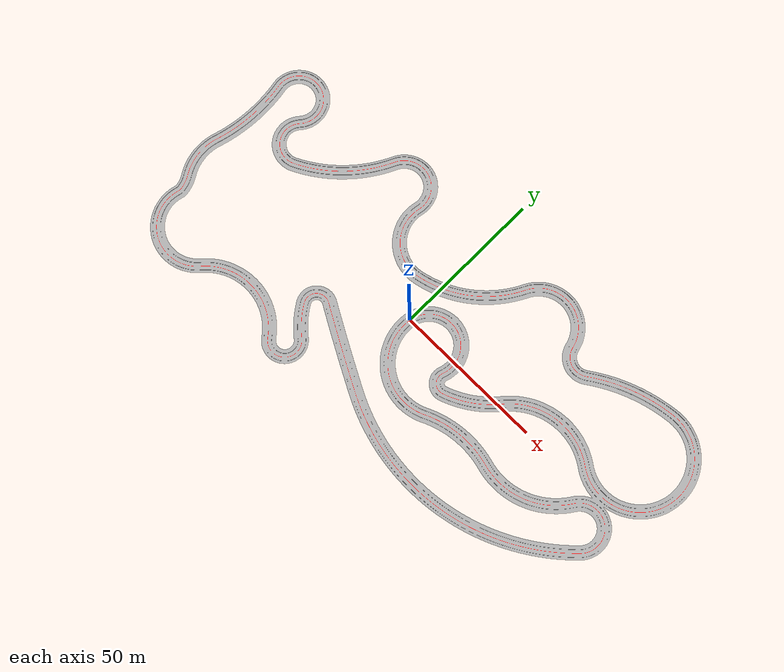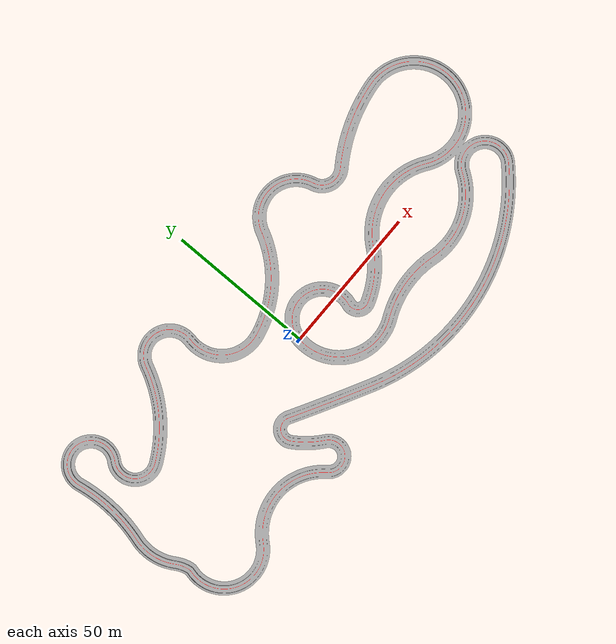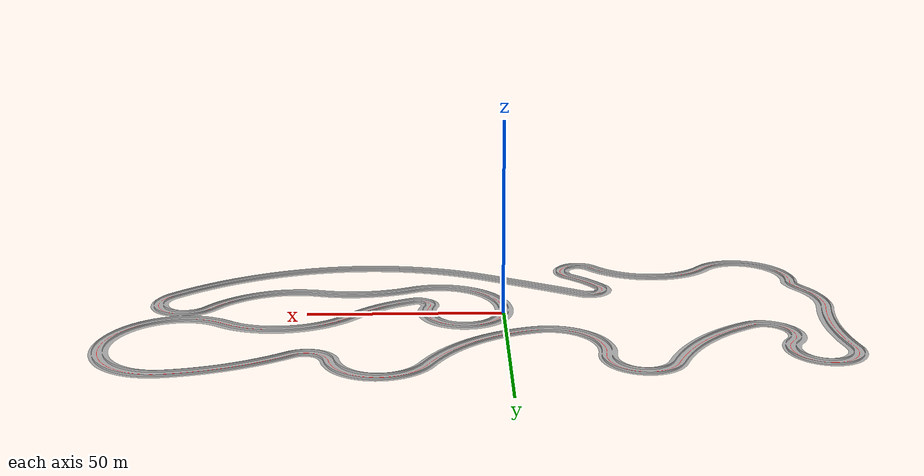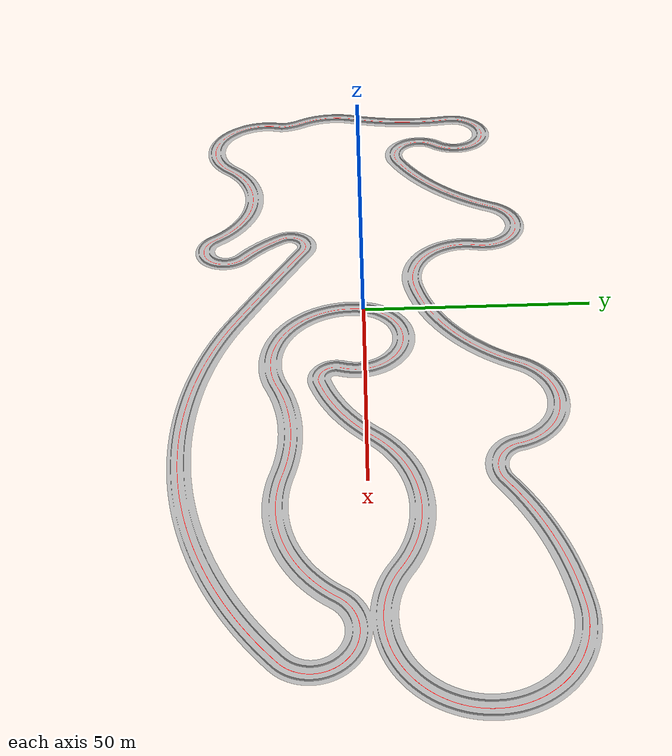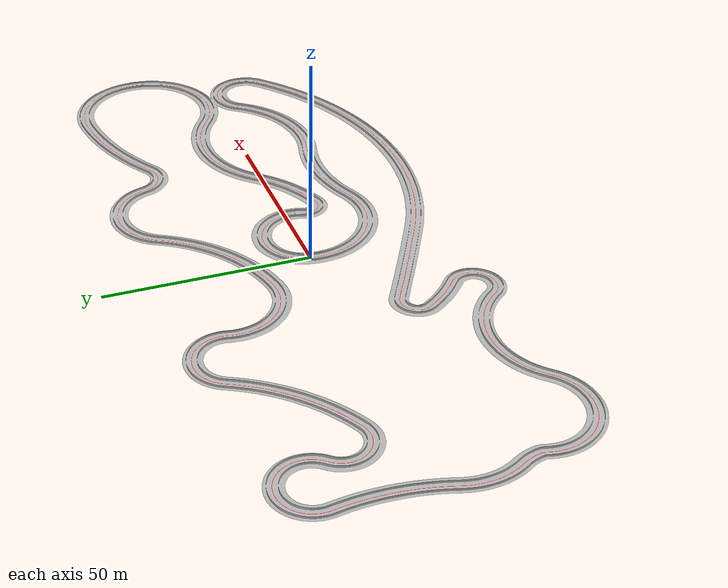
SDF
<?xml version="1.0" ?>
<sdf version="1.5">
<world name="default">
        <!-- A global light source -->
        <include>
                <uri>model://sun</uri>
        </include>
        <include>
                <uri>model://many_curves</uri>
                <pose>0 0 0 0 0 0</pose>
        </include>
        <scene>
                <sky>
                        <clouds>
                                <speed>12</speed>
                        </clouds>
                </sky>
                <ambient>1.0 1.0 1.0 1.0</ambient>
                <shadows>false</shadows>
                <grid>false</grid>
        </scene>
</world>
</sdf>

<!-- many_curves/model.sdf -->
<sdf version="1.3">
<model name="circuito2">
	<static>true</static>
	<link name="mapa">
		<pose>0 0 0 0 0 0</pose>
		<collision name="collision">
			<geometry>
				<plane>
					<normal>0 0 1</normal>
					<size>1000 1000</size>
				</plane>
			</geometry>
		</collision>
		<visual name="visual">
			<pose>0 0 0 0 0 0</pose>
			<geometry>
				<mesh>
					<uri>model://curveGP/meshes/circuit_curve.dae</uri>
				</mesh>
			</geometry>
		</visual>
	</link>
	<link name="pared">
            <pose>0 0 0 0 0 0</pose>
            <collision name="collision">
               <geometry>
                  <mesh>
                        <uri>model://curveGP/meshes/pared.dae</uri>
                  </mesh>
                                </geometry>
          </collision>
            <visual name="visual">
                <pose>0 0 0 0 0 0</pose>
                <geometry>
                  <mesh>
                        <uri>model://curveGP/meshes/pared.dae</uri>
                  </mesh>
              </geometry>
          </visual>
	</link>
</model>
</sdf>
